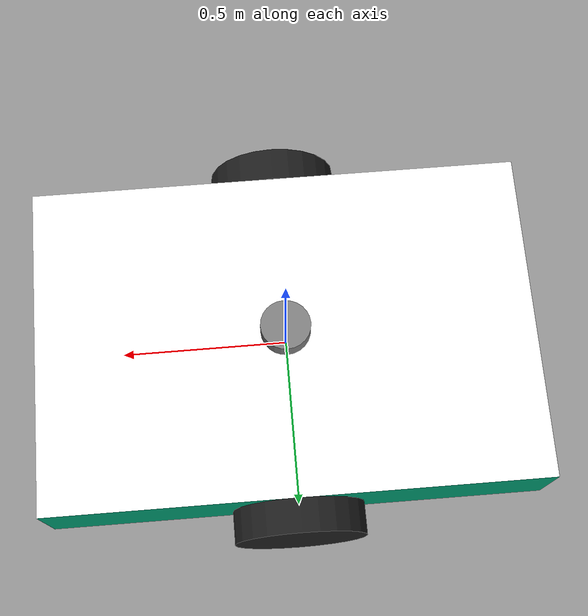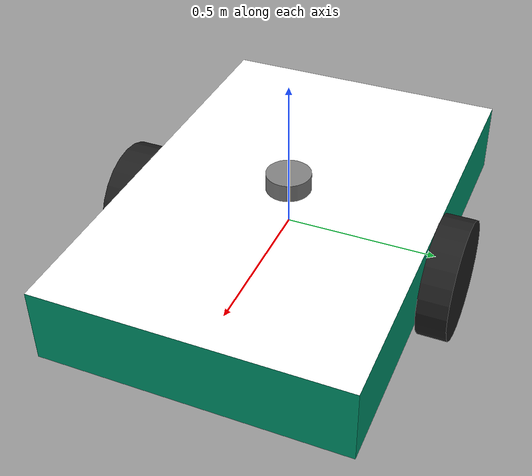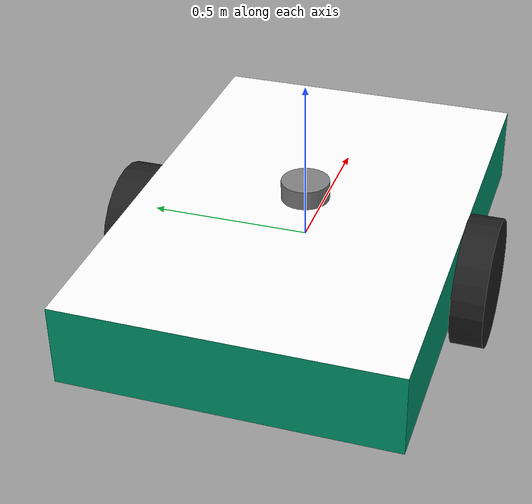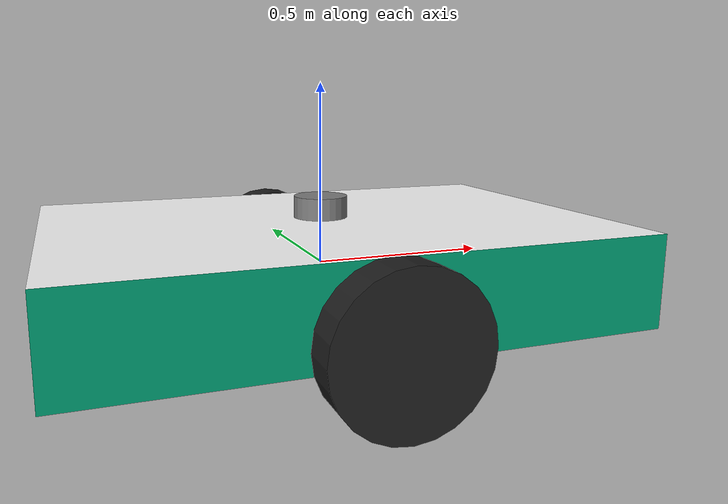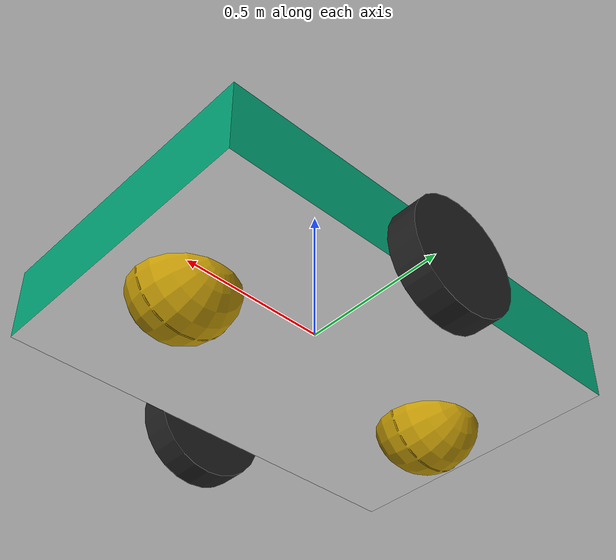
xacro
<?xml version="1.0"?>
<robot xmlns:xacro="http://www.ros.org/wiki/xacro" name="diffbot">

    <xacro:include filename="$(find diffbot)/urdf/materials.xacro"/>
    <xacro:include filename="$(find diffbot)/urdf/inertia.xacro"/>
    <xacro:include filename="$(find diffbot)/urdf/gazebo.xacro"/>

    <link name="base_footprint"/>

    <link name="base_link"/>

    <joint name="base_joint" type="fixed">
        <parent link="base_footprint"/>
        <child link="base_link"/>
        <origin xyz="0 0 0" rpy="0 0 0.0" />
    </joint>

    <link name="chassis_link">

        <collision>
            <origin xyz="0 0 0" rpy="0 0 0" />
            <geometry>
                <box size="1.0 1.5 0.3"/>
            </geometry>
        </collision>

        <visual>
            <origin xyz="0 0 0" rpy="0 0 0" />
            <geometry>
                <mesh filename="file://$(find diffbot)/meshes/body_nokiya.dae" scale="1 1 1"/>
            </geometry>
        </visual>

        <inertial>
            <mass value="1.0" />
            <xacro:box_inertia m="1.0" x="1.0" y="1.5" z = "0.3"/>
        </inertial>

    </link>

    <joint name="chassis_joint" type="fixed">
        <parent link="base_link"/>
        <child link="chassis_link"/>
        <origin xyz="0.0 0 0" rpy="0 0 0.0" />
    </joint>

    <!-- Left Wheels -->
    <link name="left_wheel">

        <collision>
            <origin xyz="0 0 0" rpy="1.57 0 0" />
            <geometry>
                <cylinder radius="0.2" length="0.1"/>
            </geometry>
        </collision>

        <visual>
            <origin xyz="0 0 0" rpy="1.57 0 0" />
            <geometry>
                <cylinder radius="0.2" length="0.1"/>
            </geometry>
        </visual>

        <inertial>
            <mass value="0.5"/>
            <xacro:cylinder_inertia m="0.5" r="-0.2" h="0.1"/>
        </inertial>

    </link>

    <joint name="left_wheel_joint" type="continuous">
        <parent link="chassis_link"/>
        <child link="left_wheel"/>
        <origin xyz="0.0 0.55 -0.07" rpy="0 0 0" />
        <axis xyz="0.0 1.0 0.0"/>
    </joint>

    <!-- Right Wheels -->
    <link name="right_wheel">

        <collision>
            <origin xyz="0 0 0" rpy="1.57 0 0" />
            <geometry>
                <cylinder radius="0.2" length="0.1"/>
            </geometry>
        </collision>

        <visual>
            <origin xyz="0 0 0" rpy="1.57 0 0" />
            <geometry>
                <cylinder radius="0.2" length="0.1"/>
            </geometry>
        </visual>

        <inertial>
            <mass value="0.5"/>
            <xacro:cylinder_inertia m="0.5" r="-0.2" h="0.1"/>
        </inertial>

    </link>

    <joint name="right_wheel_joint" type="continuous">
        <parent link="chassis_link"/>
        <child link="right_wheel"/>
        <origin xyz="0.0 -0.55 -0.07" rpy="0 0 0" />
        <axis xyz="0.0 1.0 0.0"/>
    </joint>

    <gazebo reference="left_wheel">
        <material>Gazebo/Black</material>
    </gazebo>

    <gazebo reference="right_wheel">
        <material>Gazebo/Black</material>
    </gazebo>

        <!-- Caster Wheel Front -->
    <link name="front_yaw_link">
        <visual>
            <origin rpy="0 1.5707 1.5707" xyz="0 0 0"/>
            <geometry>
              <cylinder length="0.005" radius="0.17"/>
            </geometry>
            <material name="wooden"/>
        </visual>

        <collision>
            <origin rpy="0 1.5707 1.5707" xyz="0 0 0"/>
            <geometry>
                <cylinder length="0.005" radius="0.17"/>
            </geometry>
        </collision>

        <inertial>
            <origin rpy="0 1.5707 1.5707" xyz="0 0 0"/>
            <mass value="0.001"/>
            <inertia ixx="4.020833333333333e-07" ixy="0" ixz="0" iyy="4.020833333333333e-07" iyz="0" izz="8.000000000000001e-07"/>
        </inertial>
    </link>

    <joint name="front_yaw_joint" type="continuous">
        <origin rpy="0 0 0" xyz="0.5 0 -0.1"/>
        <parent link="chassis_link" />
        <child link="front_yaw_link" />
        <axis xyz="0 0 1" />
        <limit effort="1000.0" velocity="100.0" />
        <dynamics damping="0.0" friction="0.1"/>
    </joint>

    <gazebo reference="front_yaw_link">
        <material>Gazebo/Purple</material>
    </gazebo>

    <link name="front_roll_link">
        <visual>
            <origin rpy="0 1.5707 1.5707" xyz="0 0 0"/>
            <geometry>
                <cylinder length="0.005" radius="0.17"/>
            </geometry>
            <material name="wooden"/>
        </visual>

        <collision>
            <origin rpy="0 1.5707 1.5707" xyz="0 0 0"/>
            <geometry>
                <cylinder length="0.005" radius="0.17"/>
            </geometry>
        </collision>

        <inertial>
            <origin rpy="0 1.5707 1.5707" xyz="0 0 0"/>
            <mass value="0.001"/>
            <inertia ixx="4.020833333333333e-07" ixy="0" ixz="0" iyy="4.020833333333333e-07" iyz="0" izz="8.000000000000001e-07"/>
        </inertial>
    </link>

    <joint name="front_roll_joint" type="continuous">
        <origin rpy="0 0 0" xyz="0 0 0" />
        <parent link="front_yaw_link" />
        <child link="front_roll_link" />
        <axis xyz="1 0 0" />
        <limit effort="1000.0" velocity="100.0" />
        <dynamics damping="0.0" friction="0.1"/>
    </joint>

    <gazebo reference="front_roll_link">
        <material>Gazebo/Purple</material>
    </gazebo>

    <link name="front_pitch_link">
        <visual>
            <origin rpy="0 1.5707 1.5707" xyz="0 0 0"/>
            <geometry>
                <sphere radius="0.17"/>
            </geometry>
            <material name="wooden"/>
        </visual>

        <collision>
            <origin rpy="0 1.5707 1.5707" xyz="0 0 0"/>
            <geometry>
                <sphere radius="0.17"/>
            </geometry>
        </collision>

        <inertial>
            <origin rpy="0 1.5707 1.5707" xyz="0 0 0"/>
            <mass value="0.001"/>
            <inertia ixx="6.4e-07" ixy="0" ixz="0" iyy="6.4e-07" iyz="0" izz="6.4e-07"/>
        </inertial>
    </link>

    <gazebo reference="front_pitch_link">
        <kp>100000000000000.0</kp>
        <kd>100000000000000.0</kd>
        <mu1>0.5</mu1>
        <mu2>0.5</mu2>
        <material>Gazebo/Purple</material>
    </gazebo>

    <joint name="front_pitch_joint" type="continuous">
        <origin rpy="0 0 0" xyz="0 0 0" />
        <parent link="front_roll_link" />
        <child link="front_pitch_link" />
        <axis xyz="0 1 0" />
        <limit effort="1000.0" velocity="100.0" />
        <dynamics damping="0.0" friction="0.1"/>
    </joint>

    <!-- Caster Wheel Back -->
    <link name="back_yaw_link">
        <visual>
            <origin rpy="0 1.5707 1.5707" xyz="0 0 0"/>
            <geometry>
              <cylinder length="0.005" radius="0.17"/>
            </geometry>
            <material name="wooden"/>
        </visual>

        <collision>
            <origin rpy="0 1.5707 1.5707" xyz="0 0 0"/>
            <geometry>
                <cylinder length="0.005" radius="0.17"/>
            </geometry>
        </collision>

        <inertial>
            <origin rpy="0 1.5707 1.5707" xyz="0 0 0"/>
            <mass value="0.001"/>
            <inertia ixx="4.020833333333333e-07" ixy="0" ixz="0" iyy="4.020833333333333e-07" iyz="0" izz="8.000000000000001e-07"/>
        </inertial>
    </link>

    <joint name="back_yaw_joint" type="continuous">
        <origin rpy="0 0 0" xyz="-0.5 0 -0.1"/>
        <parent link="chassis_link" />
        <child link="back_yaw_link" />
        <axis xyz="0 0 1" />
        <limit effort="1000.0" velocity="100.0" />
        <dynamics damping="0.0" friction="0.1"/>
    </joint>

    <gazebo reference="back_yaw_link">
        <material>Gazebo/Purple</material>
    </gazebo>

    <link name="back_roll_link">
        <visual>
            <origin rpy="0 1.5707 1.5707" xyz="0 0 0"/>
            <geometry>
                <cylinder length="0.005" radius="0.17"/>
            </geometry>
            <material name="wooden"/>
        </visual>

        <collision>
            <origin rpy="0 1.5707 1.5707" xyz="0 0 0"/>
            <geometry>
                <cylinder length="0.005" radius="0.17"/>
            </geometry>
        </collision>

        <inertial>
            <origin rpy="0 1.5707 1.5707" xyz="0 0 0"/>
            <mass value="0.001"/>
            <inertia ixx="4.020833333333333e-07" ixy="0" ixz="0" iyy="4.020833333333333e-07" iyz="0" izz="8.000000000000001e-07"/>
        </inertial>
    </link>

    <joint name="back_roll_joint" type="continuous">
        <origin rpy="0 0 0" xyz="0 0 0"/>
        <parent link="back_yaw_link"/>
        <child link="back_roll_link"/>
        <axis xyz="1 0 0" />
        <limit effort="1000.0" velocity="100.0" />
        <dynamics damping="0.0" friction="0.1"/>
    </joint>

    <gazebo reference="back_roll_link">
        <material>Gazebo/Purple</material>
    </gazebo>

    <link name="back_pitch_link">
        <visual>
            <origin rpy="0 1.5707 1.5707" xyz="0 0 0"/>
            <geometry>
                <sphere radius="0.17"/>
            </geometry>
            <material name="wooden"/>
        </visual>

        <collision>
            <origin rpy="0 1.5707 1.5707" xyz="0 0 0"/>
            <geometry>
                <sphere radius="0.17"/>
            </geometry>
        </collision>

        <inertial>
            <origin rpy="0 1.5707 1.5707" xyz="0 0 0"/>
            <mass value="0.001"/>
            <inertia ixx="6.4e-07" ixy="0" ixz="0" iyy="6.4e-07" iyz="0" izz="6.4e-07"/>
        </inertial>
    </link>

    <gazebo reference="back_pitch_link">
        <kp>100000000000000.0</kp>
        <kd>100000000000000.0</kd>
        <mu1>0.5</mu1>
        <mu2>0.5</mu2>
        <material>Gazebo/Purple</material>
    </gazebo>

    <joint name="back_pitch_joint" type="continuous">
        <origin rpy="0 0 0" xyz="0 0 0" />
        <parent link="back_roll_link" />
        <child link="back_pitch_link" />
        <axis xyz="0 1 0" />
        <limit effort="1000.0" velocity="100.0" />
        <dynamics damping="0.0" friction="0.1"/>
    </joint>

    <!-- ............................. 2D LIDAR ........................................ -->

    <link name="two_d_lidar">
        <collision>
            <origin xyz="0 0 0" rpy="0 0 0" />
            <geometry>
                <cylinder length="0.06" radius="0.075"/>
            </geometry>
        </collision>

        <visual>
            <origin xyz="0 0 0" rpy="0 0 0" />
            <geometry>
                <cylinder length="0.06" radius="0.075"/>
            </geometry>
            <material name="aluminium"/>
        </visual>

        <inertial>
            <origin xyz="0 0 0" rpy="0 0 0" />
            <mass value="0.1"/>
            <xacro:cylinder_inertia m="0.1" r="0.075" h="0.06"/>
        </inertial>
    </link>

    <joint name="two_d_lidar_joint" type="fixed">
        <parent link="chassis_link"/>
        <child link="two_d_lidar"/>
        <origin xyz="0.0 0 0.16" rpy="0 0 0" />
    </joint>

    <gazebo reference="two_d_lidar">
        <material>Gazebo/White</material>
    </gazebo>

    <!-- ............................. IMU ....................
    .................... -->

    <link name="imu_frame"/>

    <joint name="imu_joint" type="fixed">
        <parent link="base_link"/>
        <child link="imu_frame"/>
        <origin xyz="0.0 0.0 0.16" rpy="0.0 0.0 0.0"/>
    </joint>

</robot>

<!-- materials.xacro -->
<robot xmlns:xacro="http://www.ros.org/wiki/xacro" name="bcr_bot">

    <material name="black">
        <color rgba="0.0 0.0 0.0 1.0"/>
    </material>

    <material name="blue">
        <color rgba="0.0 0.0 0.8 1.0"/>
    </material>

    <material name="green">
        <color rgba="0.0 0.8 0.0 1.0"/>
    </material>

    <material name="yellow">
        <color rgba="1.0 1.0 0.0 1.0"/>
    </material>

    <material name="dark_grey">
        <color rgba="0.2 0.2 0.2 1.0"/>
    </material>

    <material name="orange">
        <color rgba="${255/255} ${108/255} ${10/255} 1.0"/>
    </material>

    <material name="brown">
        <color rgba="${139/255} ${69/255} ${19/255} 1.0"/>
    </material>

    <material name="red">
        <color rgba="0.8 0.0 0.0 1.0"/>
    </material>

    <material name="turquoise">
        <color rgba="${64/255} ${224/255} ${208/255} 1.0"/>
    </material>

    <material name="purple">
        <color rgba="${128/255} ${0/255} ${128/255} 1.0"/>
    </material>

    <material name="white">
        <color rgba="1.0 1.0 1.0 1.0"/>
    </material>

    <material name="aluminium">
        <color rgba="0.5 0.5 0.5 1"/>
    </material>

    <material name="plastic">
        <color rgba="0.1 0.1 0.1 1"/>
    </material>

    <material name ='wooden'>
        <color rgba='0.76 0.60 0.024 1'/>
    </material>

</robot>

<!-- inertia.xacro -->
<robot xmlns:xacro="http://www.ros.org/wiki/xacro" name="diffbot">

    <!--................................ INERTIA MATRICES .............................. -->

    <xacro:macro name="cylinder_inertia" params="m r h">
        <inertia ixx="${m * (3 * r * r + h * h) / 12}" ixy="0" ixz="0" iyy="${m * (3 * r * r + h * h) / 12}" iyz="0" izz="${m * r * r / 2}" />
    </xacro:macro>

    <xacro:macro name="box_inertia" params="m x y z">
        <inertia ixx="${m * (y * y + z * z) / 12}" ixy="0" ixz="0" iyy="${m * (x * x + z * z) / 12}" iyz="0" izz="${m * (y * y + x * x) / 12}" />
    </xacro:macro>

    <xacro:macro name="sphere_inertia" params="m r">
        <inertia ixx="${2 * m * r * r / 5}" ixy="0" ixz="0" iyy="${2 * m * r * r / 5}" iyz="0" izz="${2 * m * r * r / 5}" />
    </xacro:macro>
</robot>
